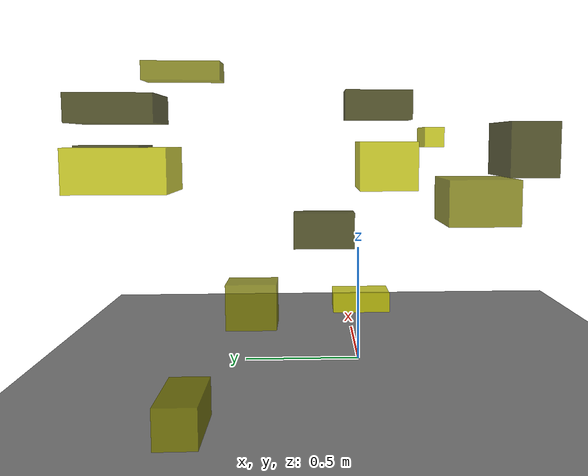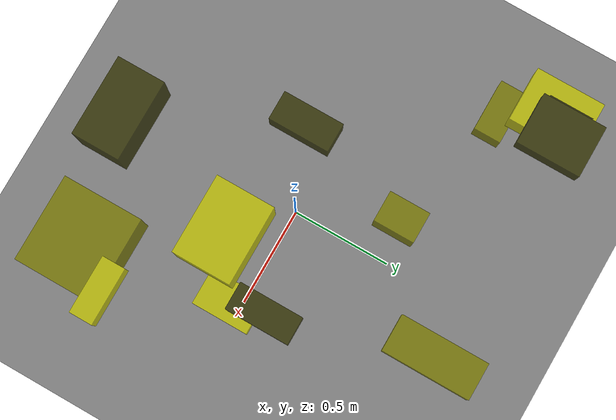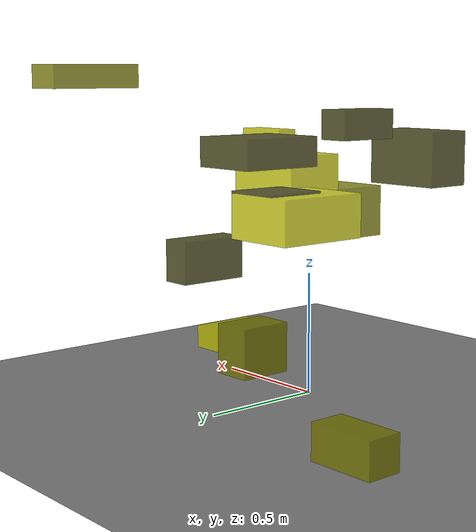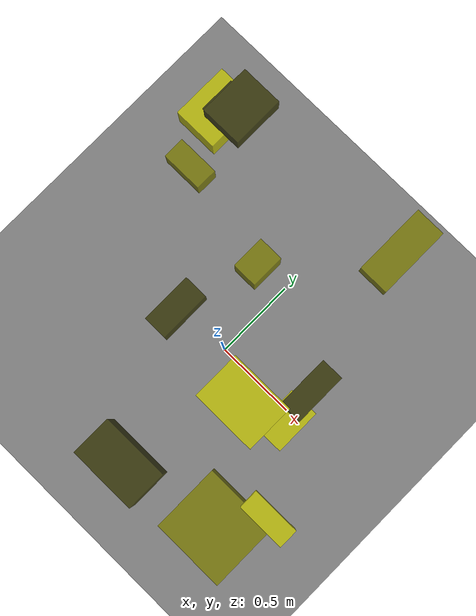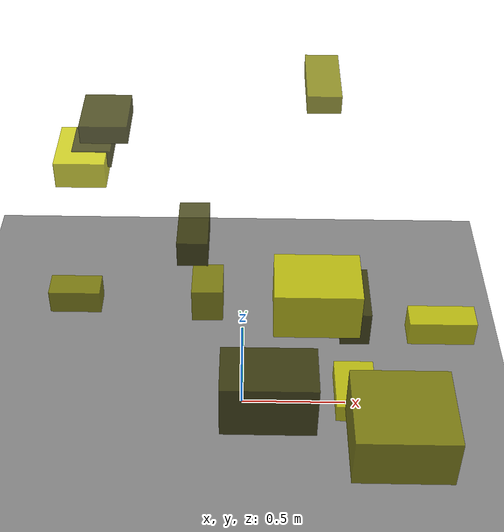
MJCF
<?xml version="1.0"?>
<mujoco model="obstacle_scene">
  <compiler angle="radian" coordinate="local"/>
  <option timestep="0.001" gravity="0 0 -9.81"/>

  <asset>
    <material name="obstacle_mat" rgba="0.8 0.8 0.0 0.8"/>
    <material name="ground_mat" rgba="0.5 0.5 0.5 1"/>
  </asset>

  <worldbody>
    <!-- Ground plane -->
    <geom name="ground" type="plane" size="3 3 0.1" material="ground_mat"/>

    <!-- Obstacles -->
    <body name="obstacle_0" pos="-0.744599 0.833697 0.907570">
      <geom name="obs_0" type="box" size="0.093297 0.099445 0.046219" rgba="0.2 0.2 0.0 0.8"/>
    </body>
    <body name="obstacle_1" pos="0.638079 -0.681618 0.650174">
      <geom name="obs_1" type="box" size="0.203892 0.187347 0.120290" rgba="0.5 0.5 0.0 0.8"/>
    </body>
    <body name="obstacle_2" pos="0.776033 -0.452789 0.989606">
      <geom name="obs_2" type="box" size="0.128954 0.051920 0.053449" rgba="0.8 0.8 0.0 0.8"/>
    </body>
    <body name="obstacle_3" pos="-0.205073 -0.060952 1.110658">
      <geom name="obs_3" type="box" size="0.062750 0.133150 0.058256" rgba="0.2 0.2 0.0 0.8"/>
    </body>
    <body name="obstacle_4" pos="-0.178031 0.452914 0.296664">
      <geom name="obs_4" type="box" size="0.076828 0.102938 0.094245" rgba="0.5 0.5 0.0 0.8"/>
    </body>
    <body name="obstacle_5" pos="0.534121 -0.048771 0.141702">
      <geom name="obs_5" type="box" size="0.093484 0.144413 0.048675" rgba="0.8 0.8 0.0 0.8"/>
    </body>
    <body name="obstacle_6" pos="0.513597 0.141389 0.513091">
      <geom name="obs_6" type="box" size="0.066838 0.155150 0.091135" rgba="0.2 0.2 0.0 0.8"/>
    </body>
    <body name="obstacle_7" pos="0.356959 0.814361 1.296099">
      <geom name="obs_7" type="box" size="0.077351 0.183423 0.044321" rgba="0.5 0.5 0.0 0.8"/>
    </body>
    <body name="obstacle_8" pos="-0.792113 0.791975 0.877472">
      <geom name="obs_8" type="box" size="0.122515 0.155726 0.069489" rgba="0.8 0.8 0.0 0.8"/>
    </body>
    <body name="obstacle_9" pos="0.102603 -0.756676 0.931420">
      <geom name="obs_9" type="box" size="0.182438 0.108337 0.121390" rgba="0.2 0.2 0.0 0.8"/>
    </body>
    <body name="obstacle_10" pos="-0.876635 0.612849 0.123977">
      <geom name="obs_10" type="box" size="0.132363 0.068315 0.066582" rgba="0.5 0.5 0.0 0.8"/>
    </body>
    <body name="obstacle_11" pos="0.312443 -0.151154 0.852445">
      <geom name="obs_11" type="box" size="0.181404 0.134504 0.113707" rgba="0.8 0.8 0.0 0.8"/>
    </body>
    <body name="obstacle_12" pos="-0.670748 0.839927 1.070402">
      <geom name="obs_12" type="box" size="0.113891 0.139668 0.046994" rgba="0.2 0.2 0.0 0.8"/>
    </body>
  </worldbody>
</mujoco>
